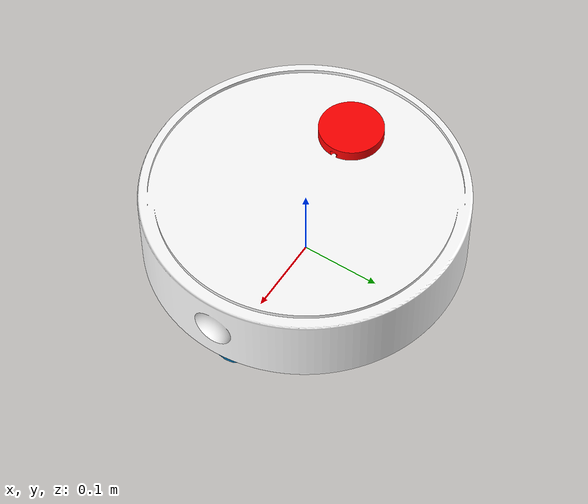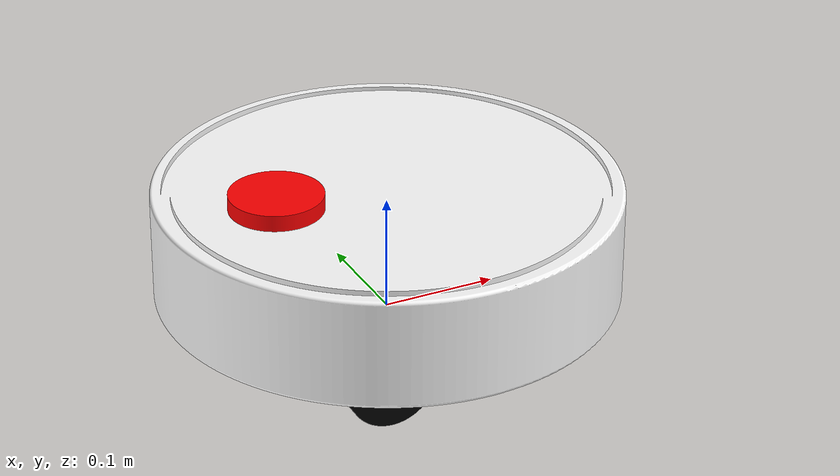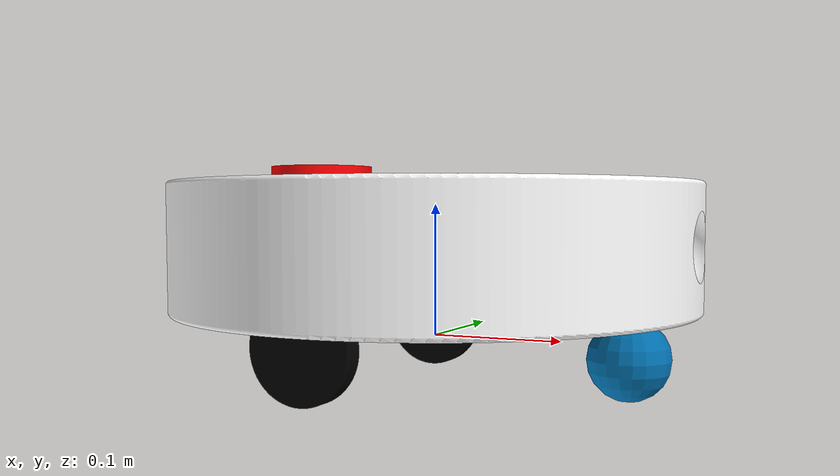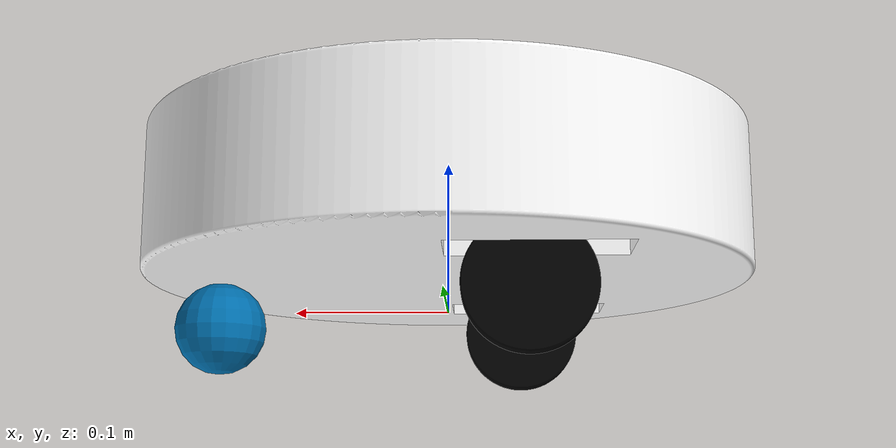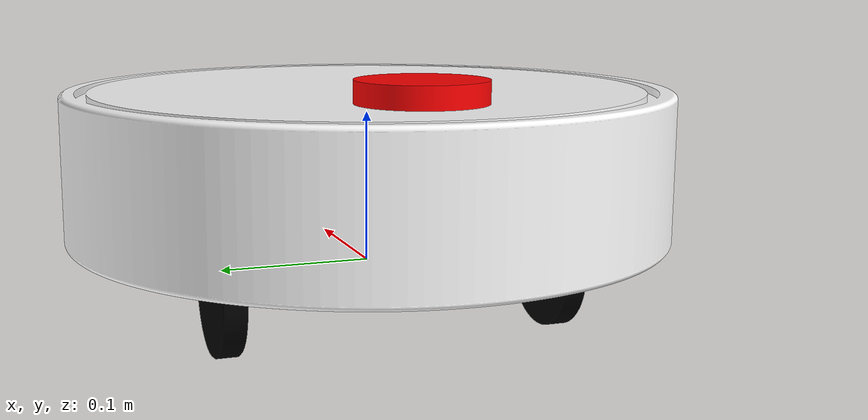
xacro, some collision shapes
<?xml version="1.0"?>
<robot name="robot_final" xmlns:xacro="http://www.ros.org/wiki/xacro">
    <xacro:include filename="$(find robot_description)/urdf/common_properties.xacro"/>
    <xacro:include filename="$(find robot_description)/urdf/mobil_base.xacro"/>
    <xacro:include filename="$(find robot_description)/urdf/mobil_base_gazebo.xacro"/>
</robot>

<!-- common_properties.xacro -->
<robot name="my_robot" xmlns:xacro="http://www.ros.org/wiki/xacro">

    <material name="black">
        <color rgba="0 0 0 1" />
    </material>
    <material name="white">
        <color rgba="1.0 1.0 1.0 1.0" />
    </material>
    <material name="red">
        <color rgba="1.0 0 0 1" />
    </material>
    <xacro:macro name="cylinder_inertial" params="m r l o_xyz o_rpy">
        <inertial>
            <mass value="${m}" />
            <origin xyz="${o_xyz}" rpy="${o_rpy}" />
            <inertia ixx="${(m/12) * (3*r*r+l*l)}" ixy="0" ixz="0"
                iyy="${(m/12) *(3*r*r+l*l)}" iyz="0"
                izz="${(m/2) *(r*r)}" />
        </inertial>
    </xacro:macro>
    <xacro:macro name="sphere_inertial" params="m r o_xyz o_rpy">
        <inertial>
            <mass value="${m}" />
            <origin xyz="${o_xyz}" rpy="${o_rpy}" />
            <inertia ixx="${(2/5) * m * r * r}" ixy="0" ixz="0"
                iyy="${(2/5) * m * r * r}" iyz="0"
                izz="${(2/5) * m * r * r}" />
        </inertial>
    </xacro:macro>
</robot>

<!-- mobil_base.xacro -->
<robot name="mobile_base" xmlns:xacro="http://www.ros.org/wiki/xacro">
    <!-- Como el diseño esn milímetros, al cargar rzvix interpreta que son metros, así que hay  que
    escalarlo-->
    <xacro:property name="base_height" value="0.0096" />
    <xacro:property name="base_width" value="0.2" />
    <xacro:property name="base_mass" value="0.5" />

    <xacro:property name="wheel_radius" value="0.02" />
    <xacro:property name="wheel_length" value="0.015" />
    <xacro:property name="wheel_mass" value="0.1" />

    <xacro:property name="caster_radius" value="0.03" />
    <xacro:property name="caster_mass" value="0.005" />

    <xacro:property name="lidar_radius" value="0.05" />
    <xacro:property name="lidar_length" value="0.02" />
    <xacro:property name="lidar_mass" value="0.005" />

    <link name="base_link">
        <visual>
            <geometry>
                <mesh filename="package://robot_description/meshes/roomba-body.stl"
                    scale="0.001 0.001 0.001" />
            </geometry>
            <origin xyz="0 0 ${wheel_radius/2}" rpy="0 0 0" />
            <material name="white" />
        </visual>
        <collision>
            <origin xyz="0 0 0.05" rpy="0 0 0" />
            <geometry>
                <cylinder radius="${base_width}" length="${base_height*10}" />
            </geometry>
        </collision>
        <xacro:cylinder_inertial m="${base_mass}" r="${base_width/2}" l="${base_height}" o_xyz="0 0 0"
            o_rpy="0 0 0" />
    </link>

    <link name="base_footprint" />

    <joint name="footprint_to_base" type="fixed">
        <parent link="base_footprint" />
        <child link="base_link" />
        <origin xyz="0 0 ${wheel_radius/2}" rpy="0 0 0" />
    </joint>

    <xacro:macro name="wheel_link" params="prefix">
        <link name="${prefix}_wheel_link">
            <visual>
                <geometry>
                    <mesh filename="package://robot_description/meshes/roomba-wheel.stl"
                        scale="0.001 0.001 0.001" />
                </geometry>
                <origin xyz="0 0 0" rpy="0 0 0" />
                <material name="black" />
            </visual>
            <collision>
                <origin xyz="0 0 0" rpy="1.570 0 0" />
                <geometry>
                    <cylinder radius="${wheel_radius*2}" length="${wheel_length}" />
                </geometry>
            </collision>
            <xacro:cylinder_inertial m="${wheel_mass}" r="${wheel_radius}" l="${wheel_length}" o_xyz="0 0 0"
                o_rpy="0 0 0" />
        </link>
    </xacro:macro>

    <xacro:wheel_link prefix="left" />
    <xacro:wheel_link prefix="right" />

    <link name="caster_ball">
        <visual>
            <geometry>
                <mesh filename="package://robot_description/meshes/roomba-ballcaster.stl"
                    scale="0.001 0.001 0.001" />
            </geometry>
            <origin xyz="0 0 0" rpy="0 0 0" />
        </visual>
        <collision>
            <origin xyz="0 0 0" rpy="0 0 0" />
            <geometry>
                <sphere radius="${caster_radius}" />
            </geometry>
            <xacro:sphere_inertial m="${caster_mass}" r="${caster_radius*2}" o_xyz="0 0 0" o_rpy="0 0 0" />
        </collision>
    </link>

    <link name="lidar">
        <visual>
            <origin xyz="0 0 0" rpy="0 0 0" />
            <geometry>
                <mesh filename="package://robot_description/meshes/roomba-lidar.stl"
                    scale="0.001 0.001 0.001" />
            </geometry>
            <material name="red" />
        </visual>
        <collision>
            <origin xyz="0 0 0" rpy="0 0 0" />
            <geometry>
                <cylinder radius="${lidar_radius}" length="${lidar_length}" />
            </geometry>
        </collision>
          <xacro:cylinder_inertial m="${lidar_mass}" r="${lidar_radius}" l="${lidar_length}" o_xyz="0 0 0" o_rpy="0 0 0" />
    </link>

    <joint name="right_wheel_joint" type="continuous">
        <parent link="base_link" />
        <child link="right_wheel_link" />
        <origin xyz="-0.05 0.11 -${wheel_radius/2}" rpy="0 0 0" />
        <axis xyz="0 1 0" />
    </joint>

    <joint name="left_wheel_joint" type="continuous">
        <parent link="base_link" />
        <child link="left_wheel_link" />
        <origin xyz="-0.05 -0.11 -${wheel_radius/2}" rpy="0 0 0" />
        <axis xyz="0 1 0" />
    </joint>

    <joint name="caster_ball_joint" type="fixed">
        <parent link="base_link" />
        <child link="caster_ball" />
        <origin xyz="0.15 0 -${wheel_radius}" rpy="0 0 0" />
    </joint>

    <joint name="lidar_joint" type="continuous">
        <parent link="base_link" />
        <child link="lidar" />
        <origin xyz="-${base_width/2} 0 0.1" rpy="0 0 0" />
        <axis xyz="0 0 1" />

    </joint>

</robot>
